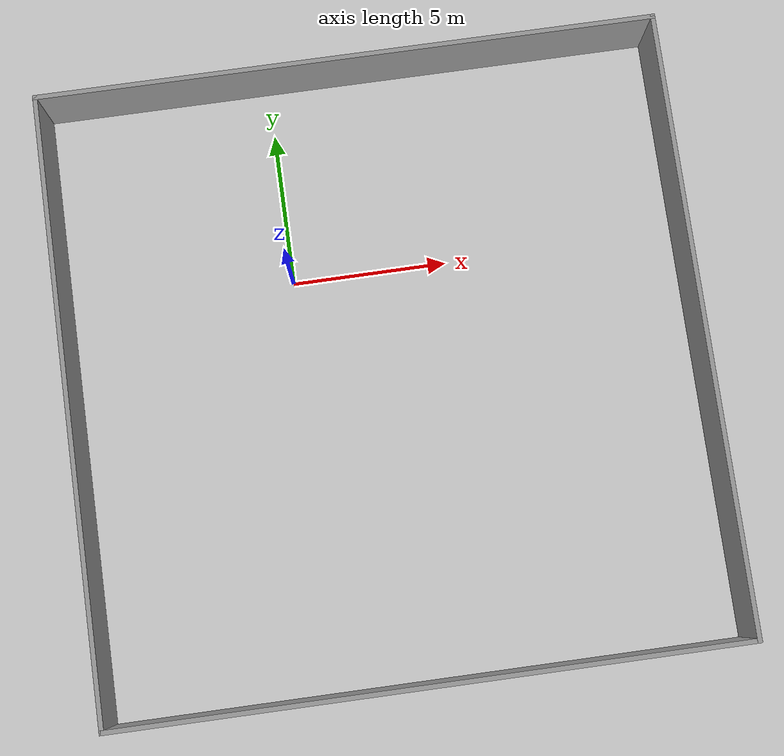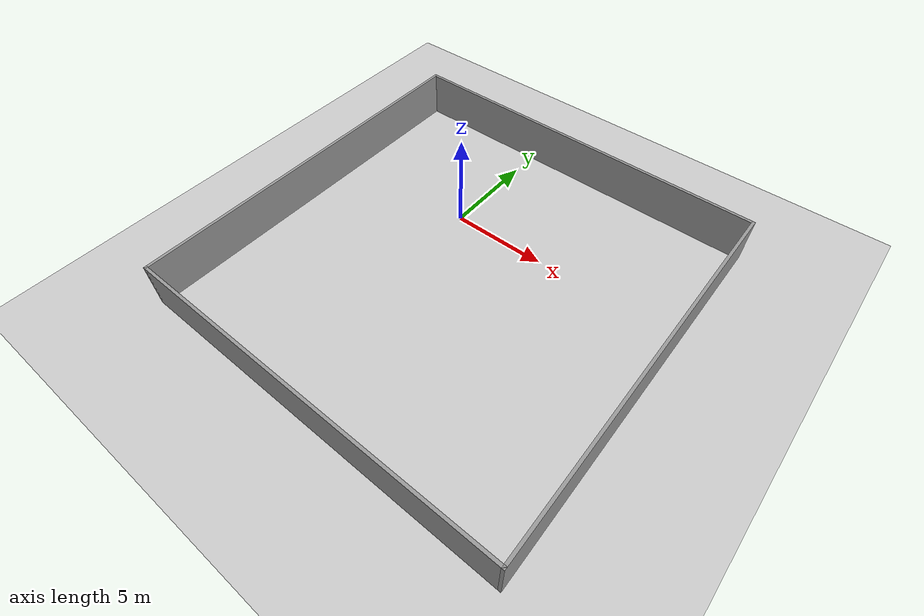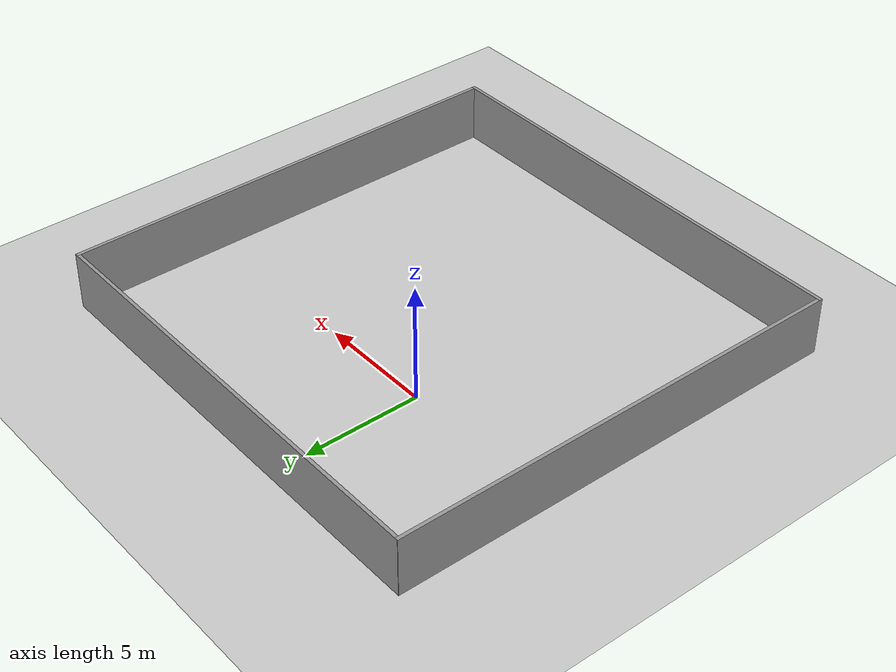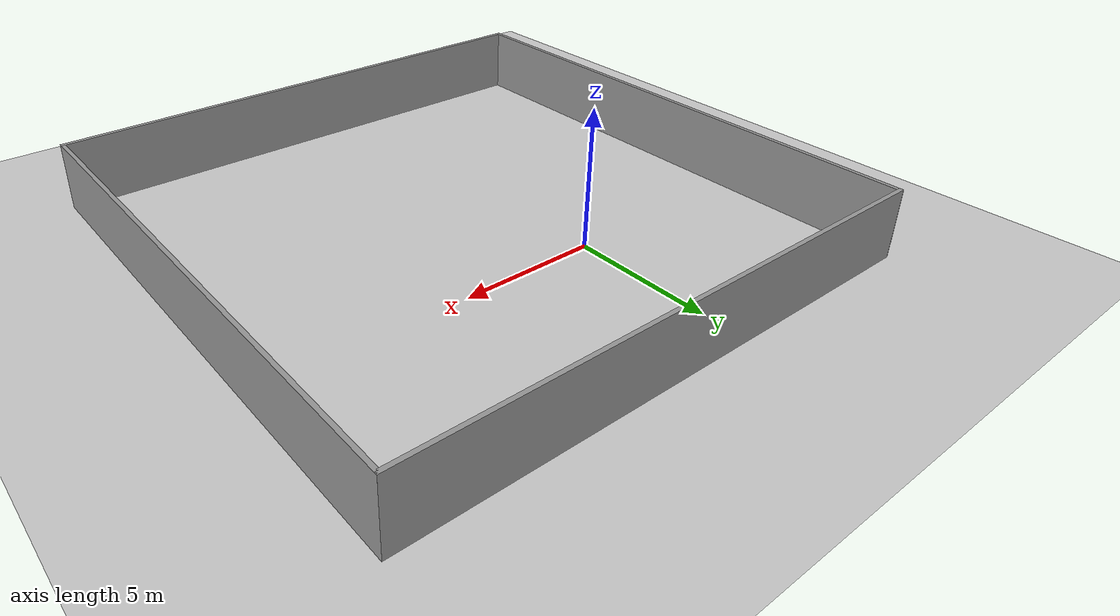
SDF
<sdf version="1.7">
 <world name="default">
  <light name="sun" type="directional">
   <pose>0 0 10 0 -0 0</pose>
   <diffuse>0.8 0.8 0.8 1</diffuse>
   <specular>0.2 0.2 0.2 1</specular>
   <attenuation>
    <range>1000</range>
    <constant>0.9</constant>
    <linear>0.01</linear>
    <quadratic>0.001</quadratic>
   </attenuation>
   <direction>-0.5 0.1 -0.9</direction>
   <spot><inner_angle>0</inner_angle><outer_angle>0</outer_angle><falloff>0</falloff></spot>
  </light>
  <model name="ground_plane">
   <static>1</static>
   <link name="link">
    <collision name="collision">
     <geometry><plane><normal>0 0 1</normal><size>100 100</size></plane></geometry>
     <surface>
      <contact><collide_bitmask>65535</collide_bitmask></contact>
      <friction><ode><mu>100</mu><mu2>50</mu2></ode></friction>
     </surface>
    </collision>
    <visual name="visual">
     <cast_shadows>0</cast_shadows>
     <geometry><plane><normal>0 0 1</normal><size>100 100</size></plane></geometry>
     <material>
      <script><uri>file://media/materials/scripts/gazebo.material</uri><name>Gazebo/Grey</name></script>
     </material>
    </visual>
   </link>
  </model>
  <gravity>0 0 -9.8</gravity>
  <magnetic_field>6e-06 2.3e-05 -4.2e-05</magnetic_field>
  <atmosphere type="adiabatic"/>
  <physics type="ode">
   <max_step_size>0.001</max_step_size>
   <real_time_factor>1</real_time_factor>
   <real_time_update_rate>1000</real_time_update_rate>
  </physics>
  <scene><ambient>0.4 0.4 0.4 1</ambient><background>0.7 0.7 0.7 1</background><shadows>1</shadows></scene>
  <spherical_coordinates>
   <surface_model>EARTH_WGS84</surface_model>
   <latitude_deg>0</latitude_deg>
   <longitude_deg>0</longitude_deg>
   <elevation>0</elevation>
   <heading_deg>0</heading_deg>
  </spherical_coordinates>
  <model name="Square_1">
   <pose>2.59843 -3.36593 0 0 -0 0</pose>
   <link name="Wall_11">
    <collision name="Wall_11_Collision">
     <geometry><box><size>20 0.15 2.5</size></box></geometry>
     <pose>0 0 1.25 0 -0 0</pose>
    </collision>
    <visual name="Wall_11_Visual">
     <pose>0 0 1.25 0 -0 0</pose>
     <geometry><box><size>20 0.15 2.5</size></box></geometry>
     <material>
      <script><uri>file://media/materials/scripts/gazebo.material</uri><name>Gazebo/Grey</name></script>
      <ambient>1 1 1 1</ambient>
     </material>
     <meta><layer>0</layer></meta>
    </visual>
    <pose>0.017386 9.925 0 0 -0 -7e-06</pose>
   </link>
   <link name="Wall_13">
    <collision name="Wall_13_Collision">
     <geometry><box><size>20 0.15 2.5</size></box></geometry>
     <pose>0 0 1.25 0 -0 0</pose>
    </collision>
    <visual name="Wall_13_Visual">
     <pose>0 0 1.25 0 -0 0</pose>
     <geometry><box><size>20 0.15 2.5</size></box></geometry>
     <material>
      <script><uri>file://media/materials/scripts/gazebo.material</uri><name>Gazebo/Grey</name></script>
      <ambient>1 1 1 1</ambient>
     </material>
     <meta><layer>0</layer></meta>
    </visual>
    <pose>9.94257 -7.3e-05 0 0 -0 -1.5708</pose>
   </link>
   <link name="Wall_15">
    <collision name="Wall_15_Collision">
     <geometry><box><size>20.0347 0.15 2.5</size></box></geometry>
     <pose>0 0 1.25 0 -0 0</pose>
    </collision>
    <visual name="Wall_15_Visual">
     <pose>0 0 1.25 0 -0 0</pose>
     <geometry><box><size>20.0347 0.15 2.5</size></box></geometry>
     <material>
      <script><uri>file://media/materials/scripts/gazebo.material</uri><name>Gazebo/Grey</name></script>
      <ambient>1 1 1 1</ambient>
     </material>
     <meta><layer>0</layer></meta>
    </visual>
    <pose>6.5e-05 -9.92507 0 0 -0 0</pose>
   </link>
   <link name="Wall_9">
    <collision name="Wall_9_Collision">
     <geometry><box><size>20 0.15 2.5</size></box></geometry>
     <pose>0 0 1.25 0 -0 0</pose>
    </collision>
    <visual name="Wall_9_Visual">
     <pose>0 0 1.25 0 -0 0</pose>
     <geometry><box><size>20 0.15 2.5</size></box></geometry>
     <material>
      <script><uri>file://media/materials/scripts/gazebo.material</uri><name>Gazebo/Grey</name></script>
      <ambient>1 1 1 1</ambient>
     </material>
     <meta><layer>0</layer></meta>
    </visual>
    <pose>-9.92511 0 0 0 -0 -1.57254</pose>
   </link>
   <static>1</static>
  </model>
 </world>
</sdf>
